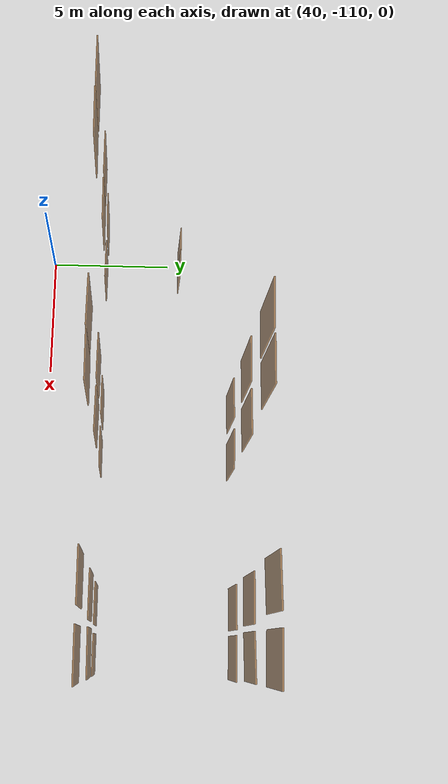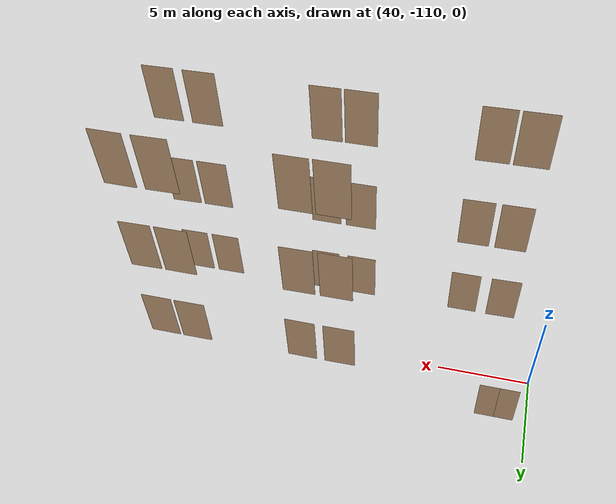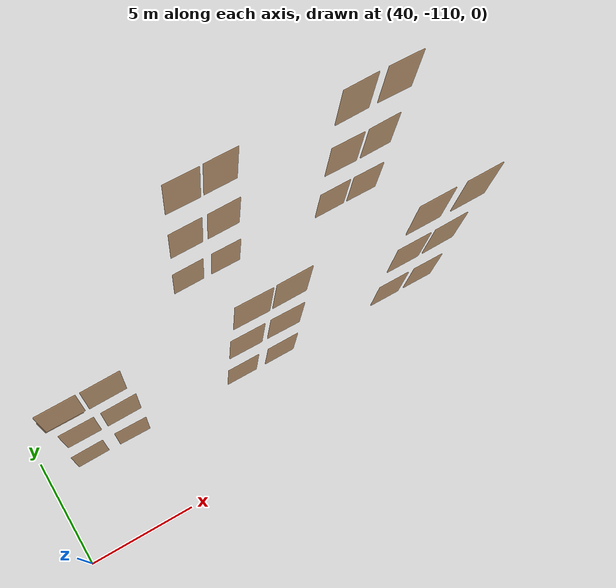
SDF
<sdf version="1.7">
 <world name="sim_world">
  <model name="0null49">
   <pose>41.993503341671925 -104.73964828435942 4.0 0 0 3.136221550022283</pose>
   <link name="right">
    <pose>0.4448968329062206 0 1.11 0 0 0</pose>
    <visual name="right_visual">
     <geometry><box><size>0.8797936658124412 0.03 2.2</size></box></geometry>
     <material>
      <ambient>0.5 0.25 0 0.6</ambient>
      <diffuse>0.5 0.25 0 0.6</diffuse>
      <pbr><metal><metalness>0.0</metalness></metal></pbr>
     </material>
    </visual>
    <collision name="right_collision">
     <geometry><box><size>0.8797936658124412 0.03 2.2</size></box></geometry>
     <surface><contact><collide_bitmask>0x02</collide_bitmask></contact></surface>
    </collision>
    <inertial>
     <mass>50.0</mass>
     <inertia><ixx>20.17041666666667</ixx><iyy>23.39182039334873</iyy><izz>3.2289037266820566</izz></inertia>
    </inertial>
   </link>
   <joint name="right_joint" type="revolute">
    <parent>world</parent>
    <child>right</child>
    <axis><xyz>0 0 1</xyz><limit><lower>0</lower><upper>1.57</upper></limit></axis>
    <pose>0.4448968329062206 0 0 0 0 0</pose>
   </joint>
   <link name="left">
    <pose>-0.4448968329062206 0 1.11 0 0 0</pose>
    <visual name="left_visual">
     <geometry><box><size>0.8797936658124412 0.03 2.2</size></box></geometry>
     <material>
      <ambient>0.5 0.25 0 0.6</ambient>
      <diffuse>0.5 0.25 0 0.6</diffuse>
      <pbr><metal><metalness>0.0</metalness></metal></pbr>
     </material>
    </visual>
    <collision name="left_collision">
     <geometry><box><size>0.8797936658124412 0.03 2.2</size></box></geometry>
     <surface><contact><collide_bitmask>0x02</collide_bitmask></contact></surface>
    </collision>
    <inertial>
     <mass>50.0</mass>
     <inertia><ixx>20.17041666666667</ixx><iyy>23.39182039334873</iyy><izz>3.2289037266820566</izz></inertia>
    </inertial>
   </link>
   <joint name="left_joint" type="revolute">
    <parent>world</parent>
    <child>left</child>
    <axis><xyz>0 0 1</xyz><limit><lower>-1.57</lower><upper>0</upper></limit></axis>
    <pose>-0.4448968329062206 0 0 0 0 0</pose>
   </joint>
   <plugin name="register_component" filename="libregister_component.so">
    <component name="Door">
     <v_max_door>0.5</v_max_door>
     <a_max_door>0.3</a_max_door>
     <a_nom_door>0.15</a_nom_door>
     <dx_min_door>0.01</dx_min_door>
     <f_max_door>500.0</f_max_door>
     <ros_interface>true</ros_interface>
     <door name="0null49" type="DoubleSwingDoor" left_joint_name="left_joint" right_joint_name="right_joint"/>
    </component>
   </plugin>
  </model>
  <model name="1null93">
   <pose>44.23892021058131 -107.39780831124213 8.0 0 0 3.1301681402699666</pose>
   <link name="right">
    <pose>0 0 1.11 0 0 0</pose>
    <visual name="right_visual">
     <geometry><box><size>1.2482682762474138 0.03 2.2</size></box></geometry>
     <material>
      <ambient>0.5 0.25 0 0.6</ambient>
      <diffuse>0.5 0.25 0 0.6</diffuse>
      <pbr><metal><metalness>0.0</metalness></metal></pbr>
     </material>
    </visual>
    <collision name="right_collision">
     <geometry><box><size>1.2482682762474138 0.03 2.2</size></box></geometry>
     <surface><contact><collide_bitmask>0x02</collide_bitmask></contact></surface>
    </collision>
    <inertial>
     <mass>50.0</mass>
     <inertia><ixx>20.17041666666667</ixx><iyy>26.659057039523713</iyy><izz>6.496140372857041</izz></inertia>
    </inertial>
   </link>
   <joint name="right_joint" type="revolute">
    <parent>world</parent>
    <child>right</child>
    <axis><xyz>0 0 -1</xyz><limit><lower>0</lower><upper>1.57</upper></limit></axis>
    <pose>0.6291341381237069 0 0 0 0 0</pose>
   </joint>
   <plugin name="register_component" filename="libregister_component.so">
    <component name="Door">
     <v_max_door>0.5</v_max_door>
     <a_max_door>0.3</a_max_door>
     <a_nom_door>0.15</a_nom_door>
     <dx_min_door>0.01</dx_min_door>
     <f_max_door>500.0</f_max_door>
     <ros_interface>true</ros_interface>
     <door name="1null93" type="SwingDoor" left_joint_name="empty_joint" right_joint_name="right_joint"/>
    </component>
   </plugin>
  </model>
  <model name="1null94">
   <pose>50.4494828809319 -107.39050890490229 8.0 0 0 -3.141410553983324</pose>
   <link name="right">
    <pose>0 0 1.11 0 0 0</pose>
    <visual name="right_visual">
     <geometry><box><size>1.220220682757675 0.03 2.2</size></box></geometry>
     <material>
      <ambient>0.5 0.25 0 0.6</ambient>
      <diffuse>0.5 0.25 0 0.6</diffuse>
      <pbr><metal><metalness>0.0</metalness></metal></pbr>
     </material>
    </visual>
    <collision name="right_collision">
     <geometry><box><size>1.220220682757675 0.03 2.2</size></box></geometry>
     <surface><contact><collide_bitmask>0x02</collide_bitmask></contact></surface>
    </collision>
    <inertial>
     <mass>50.0</mass>
     <inertia><ixx>20.17041666666667</ixx><iyy>26.37057714429003</iyy><izz>6.20766047762336</izz></inertia>
    </inertial>
   </link>
   <joint name="right_joint" type="revolute">
    <parent>world</parent>
    <child>right</child>
    <axis><xyz>0 0 -1</xyz><limit><lower>0</lower><upper>1.57</upper></limit></axis>
    <pose>0.6151103413788375 0 0 0 0 0</pose>
   </joint>
   <plugin name="register_component" filename="libregister_component.so">
    <component name="Door">
     <v_max_door>0.5</v_max_door>
     <a_max_door>0.3</a_max_door>
     <a_nom_door>0.15</a_nom_door>
     <dx_min_door>0.01</dx_min_door>
     <f_max_door>500.0</f_max_door>
     <ros_interface>true</ros_interface>
     <door name="1null94" type="SwingDoor" left_joint_name="empty_joint" right_joint_name="right_joint"/>
    </component>
   </plugin>
  </model>
  <model name="1null95">
   <pose>56.6030504424448 -107.39370122839108 8.0 0 0 3.1365184282962266</pose>
   <link name="right">
    <pose>0 0 1.11 0 0 0</pose>
    <visual name="right_visual">
     <geometry><box><size>1.204106658122132 0.03 2.2</size></box></geometry>
     <material>
      <ambient>0.5 0.25 0 0.6</ambient>
      <diffuse>0.5 0.25 0 0.6</diffuse>
      <pbr><metal><metalness>0.0</metalness></metal></pbr>
     </material>
    </visual>
    <collision name="right_collision">
     <geometry><box><size>1.204106658122132 0.03 2.2</size></box></geometry>
     <surface><contact><collide_bitmask>0x02</collide_bitmask></contact></surface>
    </collision>
    <inertial>
     <mass>50.0</mass>
     <inertia><ixx>20.17041666666667</ixx><iyy>26.20780351722521</iyy><izz>6.044886850558537</izz></inertia>
    </inertial>
   </link>
   <joint name="right_joint" type="revolute">
    <parent>world</parent>
    <child>right</child>
    <axis><xyz>0 0 -1</xyz><limit><lower>0</lower><upper>1.57</upper></limit></axis>
    <pose>0.607053329061066 0 0 0 0 0</pose>
   </joint>
   <plugin name="register_component" filename="libregister_component.so">
    <component name="Door">
     <v_max_door>0.5</v_max_door>
     <a_max_door>0.3</a_max_door>
     <a_nom_door>0.15</a_nom_door>
     <dx_min_door>0.01</dx_min_door>
     <f_max_door>500.0</f_max_door>
     <ros_interface>true</ros_interface>
     <door name="1null95" type="SwingDoor" left_joint_name="empty_joint" right_joint_name="right_joint"/>
    </component>
   </plugin>
  </model>
  <model name="1null96">
   <pose>42.52630399880518 -107.38250009334271 8.0 0 0 0.011822080263029867</pose>
   <link name="right">
    <pose>0 0 1.11 0 0 0</pose>
    <visual name="right_visual">
     <geometry><box><size>1.2564888307769841 0.03 2.2</size></box></geometry>
     <material>
      <ambient>0.5 0.25 0 0.6</ambient>
      <diffuse>0.5 0.25 0 0.6</diffuse>
      <pbr><metal><metalness>0.0</metalness></metal></pbr>
     </material>
    </visual>
    <collision name="right_collision">
     <geometry><box><size>1.2564888307769841 0.03 2.2</size></box></geometry>
     <surface><contact><collide_bitmask>0x02</collide_bitmask></contact></surface>
    </collision>
    <inertial>
     <mass>50.0</mass>
     <inertia><ixx>20.17041666666667</ixx><iyy>26.744850757780476</iyy><izz>6.581934091113802</izz></inertia>
    </inertial>
   </link>
   <joint name="right_joint" type="revolute">
    <parent>world</parent>
    <child>right</child>
    <axis><xyz>0 0 1</xyz><limit><lower>0</lower><upper>1.57</upper></limit></axis>
    <pose>0.6332444153884921 0 0 0 0 0</pose>
   </joint>
   <plugin name="register_component" filename="libregister_component.so">
    <component name="Door">
     <v_max_door>0.5</v_max_door>
     <a_max_door>0.3</a_max_door>
     <a_nom_door>0.15</a_nom_door>
     <dx_min_door>0.01</dx_min_door>
     <f_max_door>500.0</f_max_door>
     <ros_interface>true</ros_interface>
     <door name="1null96" type="SwingDoor" left_joint_name="empty_joint" right_joint_name="right_joint"/>
    </component>
   </plugin>
  </model>
  <model name="1null97">
   <pose>48.833607138856706 -107.3851510286375 8.0 0 0 -0.0022539405858351684</pose>
   <link name="right">
    <pose>0 0 1.11 0 0 0</pose>
    <visual name="right_visual">
     <geometry><box><size>1.2323957182842813 0.03 2.2</size></box></geometry>
     <material>
      <ambient>0.5 0.25 0 0.6</ambient>
      <diffuse>0.5 0.25 0 0.6</diffuse>
      <pbr><metal><metalness>0.0</metalness></metal></pbr>
     </material>
    </visual>
    <collision name="right_collision">
     <geometry><box><size>1.2323957182842813 0.03 2.2</size></box></geometry>
     <surface><contact><collide_bitmask>0x02</collide_bitmask></contact></surface>
    </collision>
    <inertial>
     <mass>50.0</mass>
     <inertia><ixx>20.17041666666667</ixx><iyy>26.49499669352263</iyy><izz>6.332080026855957</izz></inertia>
    </inertial>
   </link>
   <joint name="right_joint" type="revolute">
    <parent>world</parent>
    <child>right</child>
    <axis><xyz>0 0 1</xyz><limit><lower>0</lower><upper>1.57</upper></limit></axis>
    <pose>0.6211978591421407 0 0 0 0 0</pose>
   </joint>
   <plugin name="register_component" filename="libregister_component.so">
    <component name="Door">
     <v_max_door>0.5</v_max_door>
     <a_max_door>0.3</a_max_door>
     <a_nom_door>0.15</a_nom_door>
     <dx_min_door>0.01</dx_min_door>
     <f_max_door>500.0</f_max_door>
     <ros_interface>true</ros_interface>
     <door name="1null97" type="SwingDoor" left_joint_name="empty_joint" right_joint_name="right_joint"/>
    </component>
   </plugin>
  </model>
  <model name="1null98">
   <pose>55.14313183735949 -107.3888847403203 8.0 0 0 -0.00383811467201692</pose>
   <link name="right">
    <pose>0 0 1.11 0 0 0</pose>
    <visual name="right_visual">
     <geometry><box><size>1.2254569585401496 0.03 2.2</size></box></geometry>
     <material>
      <ambient>0.5 0.25 0 0.6</ambient>
      <diffuse>0.5 0.25 0 0.6</diffuse>
      <pbr><metal><metalness>0.0</metalness></metal></pbr>
     </material>
    </visual>
    <collision name="right_collision">
     <geometry><box><size>1.2254569585401496 0.03 2.2</size></box></geometry>
     <surface><contact><collide_bitmask>0x02</collide_bitmask></contact></surface>
    </collision>
    <inertial>
     <mass>50.0</mass>
     <inertia><ixx>20.17041666666667</ixx><iyy>26.42393648847698</iyy><izz>6.261019821810308</izz></inertia>
    </inertial>
   </link>
   <joint name="right_joint" type="revolute">
    <parent>world</parent>
    <child>right</child>
    <axis><xyz>0 0 1</xyz><limit><lower>0</lower><upper>1.57</upper></limit></axis>
    <pose>0.6177284792700748 0 0 0 0 0</pose>
   </joint>
   <plugin name="register_component" filename="libregister_component.so">
    <component name="Door">
     <v_max_door>0.5</v_max_door>
     <a_max_door>0.3</a_max_door>
     <a_nom_door>0.15</a_nom_door>
     <dx_min_door>0.01</dx_min_door>
     <f_max_door>500.0</f_max_door>
     <ros_interface>true</ros_interface>
     <door name="1null98" type="SwingDoor" left_joint_name="empty_joint" right_joint_name="right_joint"/>
    </component>
   </plugin>
  </model>
  <model name="1null99">
   <pose>48.83874099242053 -103.26221857148184 8.0 0 0 0.0031625448010696444</pose>
   <link name="right">
    <pose>0 0 1.11 0 0 0</pose>
    <visual name="right_visual">
     <geometry><box><size>1.288666091928061 0.03 2.2</size></box></geometry>
     <material>
      <ambient>0.5 0.25 0 0.6</ambient>
      <diffuse>0.5 0.25 0 0.6</diffuse>
      <pbr><metal><metalness>0.0</metalness></metal></pbr>
     </material>
    </visual>
    <collision name="right_collision">
     <geometry><box><size>1.288666091928061 0.03 2.2</size></box></geometry>
     <surface><contact><collide_bitmask>0x02</collide_bitmask></contact></surface>
    </collision>
    <inertial>
     <mass>50.0</mass>
     <inertia><ixx>20.17041666666667</ixx><iyy>27.086084568688094</iyy><izz>6.923167902021424</izz></inertia>
    </inertial>
   </link>
   <joint name="right_joint" type="revolute">
    <parent>world</parent>
    <child>right</child>
    <axis><xyz>0 0 -1</xyz><limit><lower>0</lower><upper>1.57</upper></limit></axis>
    <pose>0.6493330459640305 0 0 0 0 0</pose>
   </joint>
   <plugin name="register_component" filename="libregister_component.so">
    <component name="Door">
     <v_max_door>0.5</v_max_door>
     <a_max_door>0.3</a_max_door>
     <a_nom_door>0.15</a_nom_door>
     <dx_min_door>0.01</dx_min_door>
     <f_max_door>500.0</f_max_door>
     <ros_interface>true</ros_interface>
     <door name="1null99" type="SwingDoor" left_joint_name="empty_joint" right_joint_name="right_joint"/>
    </component>
   </plugin>
  </model>
  <model name="1null100">
   <pose>50.451835119292056 -103.27106746817003 8.0 0 0 3.1307173466037987</pose>
   <link name="right">
    <pose>0 0 1.11 0 0 0</pose>
    <visual name="right_visual">
     <geometry><box><size>1.2397098654138705 0.03 2.2</size></box></geometry>
     <material>
      <ambient>0.5 0.25 0 0.6</ambient>
      <diffuse>0.5 0.25 0 0.6</diffuse>
      <pbr><metal><metalness>0.0</metalness></metal></pbr>
     </material>
    </visual>
    <collision name="right_collision">
     <geometry><box><size>1.2397098654138705 0.03 2.2</size></box></geometry>
     <surface><contact><collide_bitmask>0x02</collide_bitmask></contact></surface>
    </collision>
    <inertial>
     <mass>50.0</mass>
     <inertia><ixx>20.17041666666667</ixx><iyy>26.570335626685324</iyy><izz>6.407418960018654</izz></inertia>
    </inertial>
   </link>
   <joint name="right_joint" type="revolute">
    <parent>world</parent>
    <child>right</child>
    <axis><xyz>0 0 1</xyz><limit><lower>0</lower><upper>1.57</upper></limit></axis>
    <pose>0.6248549327069353 0 0 0 0 0</pose>
   </joint>
   <plugin name="register_component" filename="libregister_component.so">
    <component name="Door">
     <v_max_door>0.5</v_max_door>
     <a_max_door>0.3</a_max_door>
     <a_nom_door>0.15</a_nom_door>
     <dx_min_door>0.01</dx_min_door>
     <f_max_door>500.0</f_max_door>
     <ros_interface>true</ros_interface>
     <door name="1null100" type="SwingDoor" left_joint_name="empty_joint" right_joint_name="right_joint"/>
    </component>
   </plugin>
  </model>
  <model name="1null101">
   <pose>55.16450733674342 -103.24313930478282 8.0 0 0 0.0</pose>
   <link name="right">
    <pose>0 0 1.11 0 0 0</pose>
    <visual name="right_visual">
     <geometry><box><size>1.3012048687600293 0.03 2.2</size></box></geometry>
     <material>
      <ambient>0.5 0.25 0 0.6</ambient>
      <diffuse>0.5 0.25 0 0.6</diffuse>
      <pbr><metal><metalness>0.0</metalness></metal></pbr>
     </material>
    </visual>
    <collision name="right_collision">
     <geometry><box><size>1.3012048687600293 0.03 2.2</size></box></geometry>
     <surface><contact><collide_bitmask>0x02</collide_bitmask></contact></surface>
    </collision>
    <inertial>
     <mass>50.0</mass>
     <inertia><ixx>20.17041666666667</ixx><iyy>27.221392127020025</iyy><izz>7.058475460353354</izz></inertia>
    </inertial>
   </link>
   <joint name="right_joint" type="revolute">
    <parent>world</parent>
    <child>right</child>
    <axis><xyz>0 0 -1</xyz><limit><lower>0</lower><upper>1.57</upper></limit></axis>
    <pose>0.6556024343800146 0 0 0 0 0</pose>
   </joint>
   <plugin name="register_component" filename="libregister_component.so">
    <component name="Door">
     <v_max_door>0.5</v_max_door>
     <a_max_door>0.3</a_max_door>
     <a_nom_door>0.15</a_nom_door>
     <dx_min_door>0.01</dx_min_door>
     <f_max_door>500.0</f_max_door>
     <ros_interface>true</ros_interface>
     <door name="1null101" type="SwingDoor" left_joint_name="empty_joint" right_joint_name="right_joint"/>
    </component>
   </plugin>
  </model>
  <model name="1null102">
   <pose>56.61451293731095 -103.25495650225884 8.0 0 0 3.1323386679214464</pose>
   <link name="right">
    <pose>0 0 1.11 0 0 0</pose>
    <visual name="right_visual">
     <geometry><box><size>1.3012983528134472 0.03 2.2</size></box></geometry>
     <material>
      <ambient>0.5 0.25 0 0.6</ambient>
      <diffuse>0.5 0.25 0 0.6</diffuse>
      <pbr><metal><metalness>0.0</metalness></metal></pbr>
     </material>
    </visual>
    <collision name="right_collision">
     <geometry><box><size>1.3012983528134472 0.03 2.2</size></box></geometry>
     <surface><contact><collide_bitmask>0x02</collide_bitmask></contact></surface>
    </collision>
    <inertial>
     <mass>50.0</mass>
     <inertia><ixx>20.17041666666667</ixx><iyy>27.222405845979136</iyy><izz>7.059489179312462</izz></inertia>
    </inertial>
   </link>
   <joint name="right_joint" type="revolute">
    <parent>world</parent>
    <child>right</child>
    <axis><xyz>0 0 1</xyz><limit><lower>0</lower><upper>1.57</upper></limit></axis>
    <pose>0.6556491764067236 0 0 0 0 0</pose>
   </joint>
   <plugin name="register_component" filename="libregister_component.so">
    <component name="Door">
     <v_max_door>0.5</v_max_door>
     <a_max_door>0.3</a_max_door>
     <a_nom_door>0.15</a_nom_door>
     <dx_min_door>0.01</dx_min_door>
     <f_max_door>500.0</f_max_door>
     <ros_interface>true</ros_interface>
     <door name="1null102" type="SwingDoor" left_joint_name="empty_joint" right_joint_name="right_joint"/>
    </component>
   </plugin>
  </model>
  <model name="2null86">
   <pose>44.19411567038791 -107.3840869208079 12.0 0 0 -3.1343020960266785</pose>
   <link name="right">
    <pose>0 0 1.11 0 0 0</pose>
    <visual name="right_visual">
     <geometry><box><size>1.2600931200068013 0.03 2.2</size></box></geometry>
     <material>
      <ambient>0.5 0.25 0 0.6</ambient>
      <diffuse>0.5 0.25 0 0.6</diffuse>
      <pbr><metal><metalness>0.0</metalness></metal></pbr>
     </material>
    </visual>
    <collision name="right_collision">
     <geometry><box><size>1.2600931200068013 0.03 2.2</size></box></geometry>
     <surface><contact><collide_bitmask>0x02</collide_bitmask></contact></surface>
    </collision>
    <inertial>
     <mass>50.0</mass>
     <inertia><ixx>20.17041666666667</ixx><iyy>26.782644462868653</iyy><izz>6.619727796201979</izz></inertia>
    </inertial>
   </link>
   <joint name="right_joint" type="revolute">
    <parent>world</parent>
    <child>right</child>
    <axis><xyz>0 0 -1</xyz><limit><lower>0</lower><upper>1.57</upper></limit></axis>
    <pose>0.6350465600034007 0 0 0 0 0</pose>
   </joint>
   <plugin name="register_component" filename="libregister_component.so">
    <component name="Door">
     <v_max_door>0.5</v_max_door>
     <a_max_door>0.3</a_max_door>
     <a_nom_door>0.15</a_nom_door>
     <dx_min_door>0.01</dx_min_door>
     <f_max_door>500.0</f_max_door>
     <ros_interface>true</ros_interface>
     <door name="2null86" type="SwingDoor" left_joint_name="empty_joint" right_joint_name="right_joint"/>
    </component>
   </plugin>
  </model>
  <model name="2null87">
   <pose>50.32134189597876 -107.39881641339649 12.0 0 0 3.1249858672603303</pose>
   <link name="right">
    <pose>0 0 1.11 0 0 0</pose>
    <visual name="right_visual">
     <geometry><box><size>1.2378665007325451 0.03 2.2</size></box></geometry>
     <material>
      <ambient>0.5 0.25 0 0.6</ambient>
      <diffuse>0.5 0.25 0 0.6</diffuse>
      <pbr><metal><metalness>0.0</metalness></metal></pbr>
     </material>
    </visual>
    <collision name="right_collision">
     <geometry><box><size>1.2378665007325451 0.03 2.2</size></box></geometry>
     <surface><contact><collide_bitmask>0x02</collide_bitmask></contact></surface>
    </collision>
    <inertial>
     <mass>50.0</mass>
     <inertia><ixx>20.17041666666667</ixx><iyy>26.551306140149322</iyy><izz>6.3883894734826505</izz></inertia>
    </inertial>
   </link>
   <joint name="right_joint" type="revolute">
    <parent>world</parent>
    <child>right</child>
    <axis><xyz>0 0 -1</xyz><limit><lower>0</lower><upper>1.57</upper></limit></axis>
    <pose>0.6239332503662726 0 0 0 0 0</pose>
   </joint>
   <plugin name="register_component" filename="libregister_component.so">
    <component name="Door">
     <v_max_door>0.5</v_max_door>
     <a_max_door>0.3</a_max_door>
     <a_nom_door>0.15</a_nom_door>
     <dx_min_door>0.01</dx_min_door>
     <f_max_door>500.0</f_max_door>
     <ros_interface>true</ros_interface>
     <door name="2null87" type="SwingDoor" left_joint_name="empty_joint" right_joint_name="right_joint"/>
    </component>
   </plugin>
  </model>
  <model name="2null88">
   <pose>56.541686890938244 -107.38143598551312 12.0 0 0 -3.1303392988105676</pose>
   <link name="right">
    <pose>0 0 1.11 0 0 0</pose>
    <visual name="right_visual">
     <geometry><box><size>1.257451346505099 0.03 2.2</size></box></geometry>
     <material>
      <ambient>0.5 0.25 0 0.6</ambient>
      <diffuse>0.5 0.25 0 0.6</diffuse>
      <pbr><metal><metalness>0.0</metalness></metal></pbr>
     </material>
    </visual>
    <collision name="right_collision">
     <geometry><box><size>1.257451346505099 0.03 2.2</size></box></geometry>
     <surface><contact><collide_bitmask>0x02</collide_bitmask></contact></surface>
    </collision>
    <inertial>
     <mass>50.0</mass>
     <inertia><ixx>20.17041666666667</ixx><iyy>26.754932870114533</iyy><izz>6.5920162034478595</izz></inertia>
    </inertial>
   </link>
   <joint name="right_joint" type="revolute">
    <parent>world</parent>
    <child>right</child>
    <axis><xyz>0 0 -1</xyz><limit><lower>0</lower><upper>1.57</upper></limit></axis>
    <pose>0.6337256732525495 0 0 0 0 0</pose>
   </joint>
   <plugin name="register_component" filename="libregister_component.so">
    <component name="Door">
     <v_max_door>0.5</v_max_door>
     <a_max_door>0.3</a_max_door>
     <a_nom_door>0.15</a_nom_door>
     <dx_min_door>0.01</dx_min_door>
     <f_max_door>500.0</f_max_door>
     <ros_interface>true</ros_interface>
     <door name="2null88" type="SwingDoor" left_joint_name="empty_joint" right_joint_name="right_joint"/>
    </component>
   </plugin>
  </model>
  <model name="2null89">
   <pose>42.7001456147556 -107.38498301161178 12.0 0 0 -0.0033157555079758295</pose>
   <link name="right">
    <pose>0 0 1.11 0 0 0</pose>
    <visual name="right_visual">
     <geometry><box><size>1.2511800650591312 0.03 2.2</size></box></geometry>
     <material>
      <ambient>0.5 0.25 0 0.6</ambient>
      <diffuse>0.5 0.25 0 0.6</diffuse>
      <pbr><metal><metalness>0.0</metalness></metal></pbr>
     </material>
    </visual>
    <collision name="right_collision">
     <geometry><box><size>1.2511800650591312 0.03 2.2</size></box></geometry>
     <surface><contact><collide_bitmask>0x02</collide_bitmask></contact></surface>
    </collision>
    <inertial>
     <mass>50.0</mass>
     <inertia><ixx>20.17041666666667</ixx><iyy>26.689381480005718</iyy><izz>6.526464813339048</izz></inertia>
    </inertial>
   </link>
   <joint name="right_joint" type="revolute">
    <parent>world</parent>
    <child>right</child>
    <axis><xyz>0 0 1</xyz><limit><lower>0</lower><upper>1.57</upper></limit></axis>
    <pose>0.6305900325295656 0 0 0 0 0</pose>
   </joint>
   <plugin name="register_component" filename="libregister_component.so">
    <component name="Door">
     <v_max_door>0.5</v_max_door>
     <a_max_door>0.3</a_max_door>
     <a_nom_door>0.15</a_nom_door>
     <dx_min_door>0.01</dx_min_door>
     <f_max_door>500.0</f_max_door>
     <ros_interface>true</ros_interface>
     <door name="2null89" type="SwingDoor" left_joint_name="empty_joint" right_joint_name="right_joint"/>
    </component>
   </plugin>
  </model>
  <model name="2null90">
   <pose>48.857764253444316 -107.38500168017019 12.0 0 0 -0.010863667807178838</pose>
   <link name="right">
    <pose>0 0 1.11 0 0 0</pose>
    <visual name="right_visual">
     <geometry><box><size>1.2513595752025057 0.03 2.2</size></box></geometry>
     <material>
      <ambient>0.5 0.25 0 0.6</ambient>
      <diffuse>0.5 0.25 0 0.6</diffuse>
      <pbr><metal><metalness>0.0</metalness></metal></pbr>
     </material>
    </visual>
    <collision name="right_collision">
     <geometry><box><size>1.2513595752025057 0.03 2.2</size></box></geometry>
     <surface><contact><collide_bitmask>0x02</collide_bitmask></contact></surface>
    </collision>
    <inertial>
     <mass>50.0</mass>
     <inertia><ixx>20.17041666666667</ixx><iyy>26.691253276879152</iyy><izz>6.528336610212481</izz></inertia>
    </inertial>
   </link>
   <joint name="right_joint" type="revolute">
    <parent>world</parent>
    <child>right</child>
    <axis><xyz>0 0 1</xyz><limit><lower>0</lower><upper>1.57</upper></limit></axis>
    <pose>0.6306797876012529 0 0 0 0 0</pose>
   </joint>
   <plugin name="register_component" filename="libregister_component.so">
    <component name="Door">
     <v_max_door>0.5</v_max_door>
     <a_max_door>0.3</a_max_door>
     <a_nom_door>0.15</a_nom_door>
     <dx_min_door>0.01</dx_min_door>
     <f_max_door>500.0</f_max_door>
     <ros_interface>true</ros_interface>
     <door name="2null90" type="SwingDoor" left_joint_name="empty_joint" right_joint_name="right_joint"/>
    </component>
   </plugin>
  </model>
  <model name="2null91">
   <pose>55.11132061382216 -107.38796998095799 12.0 0 0 -0.004196812954206581</pose>
   <link name="right">
    <pose>0 0 1.11 0 0 0</pose>
    <visual name="right_visual">
     <geometry><box><size>1.2533124733658354 0.03 2.2</size></box></geometry>
     <material>
      <ambient>0.5 0.25 0 0.6</ambient>
      <diffuse>0.5 0.25 0 0.6</diffuse>
      <pbr><metal><metalness>0.0</metalness></metal></pbr>
     </material>
    </visual>
    <collision name="right_collision">
     <geometry><box><size>1.2533124733658354 0.03 2.2</size></box></geometry>
     <surface><contact><collide_bitmask>0x02</collide_bitmask></contact></surface>
    </collision>
    <inertial>
     <mass>50.0</mass>
     <inertia><ixx>20.17041666666667</ixx><iyy>26.71163398289329</iyy><izz>6.548717316226616</izz></inertia>
    </inertial>
   </link>
   <joint name="right_joint" type="revolute">
    <parent>world</parent>
    <child>right</child>
    <axis><xyz>0 0 1</xyz><limit><lower>0</lower><upper>1.57</upper></limit></axis>
    <pose>0.6316562366829177 0 0 0 0 0</pose>
   </joint>
   <plugin name="register_component" filename="libregister_component.so">
    <component name="Door">
     <v_max_door>0.5</v_max_door>
     <a_max_door>0.3</a_max_door>
     <a_nom_door>0.15</a_nom_door>
     <dx_min_door>0.01</dx_min_door>
     <f_max_door>500.0</f_max_door>
     <ros_interface>true</ros_interface>
     <door name="2null91" type="SwingDoor" left_joint_name="empty_joint" right_joint_name="right_joint"/>
    </component>
   </plugin>
  </model>
  <model name="2null92">
   <pose>48.86166598215283 -103.26010902438108 12.0 0 0 -0.004001380595488037</pose>
   <link name="right">
    <pose>0 0 1.11 0 0 0</pose>
    <visual name="right_visual">
     <geometry><box><size>1.268358439866204 0.03 2.2</size></box></geometry>
     <material>
      <ambient>0.5 0.25 0 0.6</ambient>
      <diffuse>0.5 0.25 0 0.6</diffuse>
      <pbr><metal><metalness>0.0</metalness></metal></pbr>
     </material>
    </visual>
    <collision name="right_collision">
     <geometry><box><size>1.268358439866204 0.03 2.2</size></box></geometry>
     <surface><contact><collide_bitmask>0x02</collide_bitmask></contact></surface>
    </collision>
    <inertial>
     <mass>50.0</mass>
     <inertia><ixx>20.17041666666667</ixx><iyy>26.869721383249303</iyy><izz>6.70680471658263</izz></inertia>
    </inertial>
   </link>
   <joint name="right_joint" type="revolute">
    <parent>world</parent>
    <child>right</child>
    <axis><xyz>0 0 -1</xyz><limit><lower>0</lower><upper>1.57</upper></limit></axis>
    <pose>0.639179219933102 0 0 0 0 0</pose>
   </joint>
   <plugin name="register_component" filename="libregister_component.so">
    <component name="Door">
     <v_max_door>0.5</v_max_door>
     <a_max_door>0.3</a_max_door>
     <a_nom_door>0.15</a_nom_door>
     <dx_min_door>0.01</dx_min_door>
     <f_max_door>500.0</f_max_door>
     <ros_interface>true</ros_interface>
     <door name="2null92" type="SwingDoor" left_joint_name="empty_joint" right_joint_name="right_joint"/>
    </component>
   </plugin>
  </model>
  <model name="2null93">
   <pose>50.32707314341184 -103.26429078146579 12.0 0 0 -3.1397338099854477</pose>
   <link name="right">
    <pose>0 0 1.11 0 0 0</pose>
    <visual name="right_visual">
     <geometry><box><size>1.255431749751349 0.03 2.2</size></box></geometry>
     <material>
      <ambient>0.5 0.25 0 0.6</ambient>
      <diffuse>0.5 0.25 0 0.6</diffuse>
      <pbr><metal><metalness>0.0</metalness></metal></pbr>
     </material>
    </visual>
    <collision name="right_collision">
     <geometry><box><size>1.255431749751349 0.03 2.2</size></box></geometry>
     <surface><contact><collide_bitmask>0x02</collide_bitmask></contact></surface>
    </collision>
    <inertial>
     <mass>50.0</mass>
     <inertia><ixx>20.17041666666667</ixx><iyy>26.7337869928489</iyy><izz>6.5708703261822246</izz></inertia>
    </inertial>
   </link>
   <joint name="right_joint" type="revolute">
    <parent>world</parent>
    <child>right</child>
    <axis><xyz>0 0 1</xyz><limit><lower>0</lower><upper>1.57</upper></limit></axis>
    <pose>0.6327158748756745 0 0 0 0 0</pose>
   </joint>
   <plugin name="register_component" filename="libregister_component.so">
    <component name="Door">
     <v_max_door>0.5</v_max_door>
     <a_max_door>0.3</a_max_door>
     <a_nom_door>0.15</a_nom_door>
     <dx_min_door>0.01</dx_min_door>
     <f_max_door>500.0</f_max_door>
     <ros_interface>true</ros_interface>
     <door name="2null93" type="SwingDoor" left_joint_name="empty_joint" right_joint_name="right_joint"/>
    </component>
   </plugin>
  </model>
  <model name="2null94">
   <pose>55.10517865810399 -103.26333868498668 12.0 0 0 -0.011713749929440909</pose>
   <link name="right">
    <pose>0 0 1.11 0 0 0</pose>
    <visual name="right_visual">
     <geometry><box><size>1.2968887483177105 0.03 2.2</size></box></geometry>
     <material>
      <ambient>0.5 0.25 0 0.6</ambient>
      <diffuse>0.5 0.25 0 0.6</diffuse>
      <pbr><metal><metalness>0.0</metalness></metal></pbr>
     </material>
    </visual>
    <collision name="right_collision">
     <geometry><box><size>1.2968887483177105 0.03 2.2</size></box></geometry>
     <surface><contact><collide_bitmask>0x02</collide_bitmask></contact></surface>
    </collision>
    <inertial>
     <mass>50.0</mass>
     <inertia><ixx>20.17041666666667</ixx><iyy>27.17466843963783</iyy><izz>7.0117517729711585</izz></inertia>
    </inertial>
   </link>
   <joint name="right_joint" type="revolute">
    <parent>world</parent>
    <child>right</child>
    <axis><xyz>0 0 -1</xyz><limit><lower>0</lower><upper>1.57</upper></limit></axis>
    <pose>0.6534443741588553 0 0 0 0 0</pose>
   </joint>
   <plugin name="register_component" filename="libregister_component.so">
    <component name="Door">
     <v_max_door>0.5</v_max_door>
     <a_max_door>0.3</a_max_door>
     <a_nom_door>0.15</a_nom_door>
     <dx_min_door>0.01</dx_min_door>
     <f_max_door>500.0</f_max_door>
     <ros_interface>true</ros_interface>
     <door name="2null94" type="SwingDoor" left_joint_name="empty_joint" right_joint_name="right_joint"/>
    </component>
   </plugin>
  </model>
  <model name="2null95">
   <pose>56.544300489116196 -103.26238658850757 12.0 0 0 -3.129282222118571</pose>
   <link name="right">
    <pose>0 0 1.11 0 0 0</pose>
    <visual name="right_visual">
     <geometry><box><size>1.25477865651261 0.03 2.2</size></box></geometry>
     <material>
      <ambient>0.5 0.25 0 0.6</ambient>
      <diffuse>0.5 0.25 0 0.6</diffuse>
      <pbr><metal><metalness>0.0</metalness></metal></pbr>
     </material>
    </visual>
    <collision name="right_collision">
     <geometry><box><size>1.25477865651261 0.03 2.2</size></box></geometry>
     <surface><contact><collide_bitmask>0x02</collide_bitmask></contact></surface>
    </collision>
    <inertial>
     <mass>50.0</mass>
     <inertia><ixx>20.17041666666667</ixx><iyy>26.7269561534983</iyy><izz>6.564039486831628</izz></inertia>
    </inertial>
   </link>
   <joint name="right_joint" type="revolute">
    <parent>world</parent>
    <child>right</child>
    <axis><xyz>0 0 1</xyz><limit><lower>0</lower><upper>1.57</upper></limit></axis>
    <pose>0.632389328256305 0 0 0 0 0</pose>
   </joint>
   <plugin name="register_component" filename="libregister_component.so">
    <component name="Door">
     <v_max_door>0.5</v_max_door>
     <a_max_door>0.3</a_max_door>
     <a_nom_door>0.15</a_nom_door>
     <dx_min_door>0.01</dx_min_door>
     <f_max_door>500.0</f_max_door>
     <ros_interface>true</ros_interface>
     <door name="2null95" type="SwingDoor" left_joint_name="empty_joint" right_joint_name="right_joint"/>
    </component>
   </plugin>
  </model>
  <model name="nullgr">
   <pose>42.59124364710624 -107.48370385922715 16.0 0 0 -4.1949482919383154e-05</pose>
   <link name="right">
    <pose>0 0 1.11 0 0 0</pose>
    <visual name="right_visual">
     <geometry><box><size>1.295083842518337 0.03 2.2</size></box></geometry>
     <material>
      <ambient>0.5 0.25 0 0.6</ambient>
      <diffuse>0.5 0.25 0 0.6</diffuse>
      <pbr><metal><metalness>0.0</metalness></metal></pbr>
     </material>
    </visual>
    <collision name="right_collision">
     <geometry><box><size>1.295083842518337 0.03 2.2</size></box></geometry>
     <surface><contact><collide_bitmask>0x02</collide_bitmask></contact></surface>
    </collision>
    <inertial>
     <mass>50.0</mass>
     <inertia><ixx>20.17041666666667</ixx><iyy>27.155175663133594</iyy><izz>6.992258996466921</izz></inertia>
    </inertial>
   </link>
   <joint name="right_joint" type="revolute">
    <parent>world</parent>
    <child>right</child>
    <axis><xyz>0 0 1</xyz><limit><lower>0</lower><upper>1.57</upper></limit></axis>
    <pose>0.6525419212591685 0 0 0 0 0</pose>
   </joint>
   <plugin name="register_component" filename="libregister_component.so">
    <component name="Door">
     <v_max_door>0.5</v_max_door>
     <a_max_door>0.3</a_max_door>
     <a_nom_door>0.15</a_nom_door>
     <dx_min_door>0.01</dx_min_door>
     <f_max_door>500.0</f_max_door>
     <ros_interface>true</ros_interface>
     <door name="nullgr" type="SwingDoor" left_joint_name="empty_joint" right_joint_name="right_joint"/>
    </component>
   </plugin>
  </model>
  <model name="nullARG">
   <pose>43.987892199842875 -107.48948297282593 16.0 0 0 -3.1325492217128934</pose>
   <link name="right">
    <pose>0 0 1.11 0 0 0</pose>
    <visual name="right_visual">
     <geometry><box><size>1.2492985110038632 0.03 2.2</size></box></geometry>
     <material>
      <ambient>0.5 0.25 0 0.6</ambient>
      <diffuse>0.5 0.25 0 0.6</diffuse>
      <pbr><metal><metalness>0.0</metalness></metal></pbr>
     </material>
    </visual>
    <collision name="right_collision">
     <geometry><box><size>1.2492985110038632 0.03 2.2</size></box></geometry>
     <surface><contact><collide_bitmask>0x02</collide_bitmask></contact></surface>
    </collision>
    <inertial>
     <mass>50.0</mass>
     <inertia><ixx>20.17041666666667</ixx><iyy>26.669778206651962</iyy><izz>6.506861539985291</izz></inertia>
    </inertial>
   </link>
   <joint name="right_joint" type="revolute">
    <parent>world</parent>
    <child>right</child>
    <axis><xyz>0 0 -1</xyz><limit><lower>0</lower><upper>1.57</upper></limit></axis>
    <pose>0.6296492555019316 0 0 0 0 0</pose>
   </joint>
   <plugin name="register_component" filename="libregister_component.so">
    <component name="Door">
     <v_max_door>0.5</v_max_door>
     <a_max_door>0.3</a_max_door>
     <a_nom_door>0.15</a_nom_door>
     <dx_min_door>0.01</dx_min_door>
     <f_max_door>500.0</f_max_door>
     <ros_interface>true</ros_interface>
     <door name="nullARG" type="SwingDoor" left_joint_name="empty_joint" right_joint_name="right_joint"/>
    </component>
   </plugin>
  </model>
  <model name="nullGR">
   <pose>48.85962288895507 -107.48753071979323 16.0 0 0 -0.015150689843453807</pose>
   <link name="right">
    <pose>0 0 1.11 0 0 0</pose>
    <visual name="right_visual">
     <geometry><box><size>1.2408359287551358 0.03 2.2</size></box></geometry>
     <material>
      <ambient>0.5 0.25 0 0.6</ambient>
      <diffuse>0.5 0.25 0 0.6</diffuse>
      <pbr><metal><metalness>0.0</metalness></metal></pbr>
     </material>
    </visual>
    <collision name="right_collision">
     <geometry><box><size>1.2408359287551358 0.03 2.2</size></box></geometry>
     <surface><contact><collide_bitmask>0x02</collide_bitmask></contact></surface>
    </collision>
    <inertial>
     <mass>50.0</mass>
     <inertia><ixx>20.17041666666667</ixx><iyy>26.581974175373425</iyy><izz>6.419057508706753</izz></inertia>
    </inertial>
   </link>
   <joint name="right_joint" type="revolute">
    <parent>world</parent>
    <child>right</child>
    <axis><xyz>0 0 1</xyz><limit><lower>0</lower><upper>1.57</upper></limit></axis>
    <pose>0.6254179643775679 0 0 0 0 0</pose>
   </joint>
   <plugin name="register_component" filename="libregister_component.so">
    <component name="Door">
     <v_max_door>0.5</v_max_door>
     <a_max_door>0.3</a_max_door>
     <a_nom_door>0.15</a_nom_door>
     <dx_min_door>0.01</dx_min_door>
     <f_max_door>500.0</f_max_door>
     <ros_interface>true</ros_interface>
     <door name="nullGR" type="SwingDoor" left_joint_name="empty_joint" right_joint_name="right_joint"/>
    </component>
   </plugin>
  </model>
  <model name="nullDZG">
   <pose>50.17885283700457 -107.48415009057148 16.0 0 0 -3.1377844403688924</pose>
   <link name="right">
    <pose>0 0 1.11 0 0 0</pose>
    <visual name="right_visual">
     <geometry><box><size>1.176734429774227 0.03 2.2</size></box></geometry>
     <material>
      <ambient>0.5 0.25 0 0.6</ambient>
      <diffuse>0.5 0.25 0 0.6</diffuse>
      <pbr><metal><metalness>0.0</metalness></metal></pbr>
     </material>
    </visual>
    <collision name="right_collision">
     <geometry><box><size>1.176734429774227 0.03 2.2</size></box></geometry>
     <surface><contact><collide_bitmask>0x02</collide_bitmask></contact></surface>
    </collision>
    <inertial>
     <mass>50.0</mass>
     <inertia><ixx>20.17041666666667</ixx><iyy>25.936266325900316</iyy><izz>5.773349659233647</izz></inertia>
    </inertial>
   </link>
   <joint name="right_joint" type="revolute">
    <parent>world</parent>
    <child>right</child>
    <axis><xyz>0 0 -1</xyz><limit><lower>0</lower><upper>1.57</upper></limit></axis>
    <pose>0.5933672148871135 0 0 0 0 0</pose>
   </joint>
   <plugin name="register_component" filename="libregister_component.so">
    <component name="Door">
     <v_max_door>0.5</v_max_door>
     <a_max_door>0.3</a_max_door>
     <a_nom_door>0.15</a_nom_door>
     <dx_min_door>0.01</dx_min_door>
     <f_max_door>500.0</f_max_door>
     <ros_interface>true</ros_interface>
     <door name="nullDZG" type="SwingDoor" left_joint_name="empty_joint" right_joint_name="right_joint"/>
    </component>
   </plugin>
  </model>
  <model name="nullGFDZB">
   <pose>54.945421556273935 -107.46667673067444 16.0 0 0 -4.194948292964487e-05</pose>
   <link name="right">
    <pose>0 0 1.11 0 0 0</pose>
    <visual name="right_visual">
     <geometry><box><size>1.2346253875685933 0.03 2.2</size></box></geometry>
     <material>
      <ambient>0.5 0.25 0 0.6</ambient>
      <diffuse>0.5 0.25 0 0.6</diffuse>
      <pbr><metal><metalness>0.0</metalness></metal></pbr>
     </material>
    </visual>
    <collision name="right_collision">
     <geometry><box><size>1.2346253875685933 0.03 2.2</size></box></geometry>
     <surface><contact><collide_bitmask>0x02</collide_bitmask></contact></surface>
    </collision>
    <inertial>
     <mass>50.0</mass>
     <inertia><ixx>20.17041666666667</ixx><iyy>26.517916031787085</iyy><izz>6.354999365120413</izz></inertia>
    </inertial>
   </link>
   <joint name="right_joint" type="revolute">
    <parent>world</parent>
    <child>right</child>
    <axis><xyz>0 0 1</xyz><limit><lower>0</lower><upper>1.57</upper></limit></axis>
    <pose>0.6223126937842967 0 0 0 0 0</pose>
   </joint>
   <plugin name="register_component" filename="libregister_component.so">
    <component name="Door">
     <v_max_door>0.5</v_max_door>
     <a_max_door>0.3</a_max_door>
     <a_nom_door>0.15</a_nom_door>
     <dx_min_door>0.01</dx_min_door>
     <f_max_door>500.0</f_max_door>
     <ros_interface>true</ros_interface>
     <door name="nullGFDZB" type="SwingDoor" left_joint_name="empty_joint" right_joint_name="right_joint"/>
    </component>
   </plugin>
  </model>
  <model name="nulDGl">
   <pose>56.55599558405807 -107.4778198145019 16.0 0 0 -3.138498240305799</pose>
   <link name="right">
    <pose>0 0 1.11 0 0 0</pose>
    <visual name="right_visual">
     <geometry><box><size>1.225383586327515 0.03 2.2</size></box></geometry>
     <material>
      <ambient>0.5 0.25 0 0.6</ambient>
      <diffuse>0.5 0.25 0 0.6</diffuse>
      <pbr><metal><metalness>0.0</metalness></metal></pbr>
     </material>
    </visual>
    <collision name="right_collision">
     <geometry><box><size>1.225383586327515 0.03 2.2</size></box></geometry>
     <surface><contact><collide_bitmask>0x02</collide_bitmask></contact></surface>
    </collision>
    <inertial>
     <mass>50.0</mass>
     <inertia><ixx>20.17041666666667</ixx><iyy>26.423187223503685</iyy><izz>6.260270556837011</izz></inertia>
    </inertial>
   </link>
   <joint name="right_joint" type="revolute">
    <parent>world</parent>
    <child>right</child>
    <axis><xyz>0 0 -1</xyz><limit><lower>0</lower><upper>1.57</upper></limit></axis>
    <pose>0.6176917931637576 0 0 0 0 0</pose>
   </joint>
   <plugin name="register_component" filename="libregister_component.so">
    <component name="Door">
     <v_max_door>0.5</v_max_door>
     <a_max_door>0.3</a_max_door>
     <a_nom_door>0.15</a_nom_door>
     <dx_min_door>0.01</dx_min_door>
     <f_max_door>500.0</f_max_door>
     <ros_interface>true</ros_interface>
     <door name="nulDGl" type="SwingDoor" left_joint_name="empty_joint" right_joint_name="right_joint"/>
    </component>
   </plugin>
  </model>
  <model name="nulHSl">
   <pose>48.84422824360995 -103.27104630135189 16.0 0 0 -0.017584523232012282</pose>
   <link name="right">
    <pose>0 0 1.11 0 0 0</pose>
    <visual name="right_visual">
     <geometry><box><size>1.2381803058120981 0.03 2.2</size></box></geometry>
     <material>
      <ambient>0.5 0.25 0 0.6</ambient>
      <diffuse>0.5 0.25 0 0.6</diffuse>
      <pbr><metal><metalness>0.0</metalness></metal></pbr>
     </material>
    </visual>
    <collision name="right_collision">
     <geometry><box><size>1.2381803058120981 0.03 2.2</size></box></geometry>
     <surface><contact><collide_bitmask>0x02</collide_bitmask></contact></surface>
    </collision>
    <inertial>
     <mass>50.0</mass>
     <inertia><ixx>20.17041666666667</ixx><iyy>26.554543623753926</iyy><izz>6.3916269570872535</izz></inertia>
    </inertial>
   </link>
   <joint name="right_joint" type="revolute">
    <parent>world</parent>
    <child>right</child>
    <axis><xyz>0 0 -1</xyz><limit><lower>0</lower><upper>1.57</upper></limit></axis>
    <pose>0.6240901529060491 0 0 0 0 0</pose>
   </joint>
   <plugin name="register_component" filename="libregister_component.so">
    <component name="Door">
     <v_max_door>0.5</v_max_door>
     <a_max_door>0.3</a_max_door>
     <a_nom_door>0.15</a_nom_door>
     <dx_min_door>0.01</dx_min_door>
     <f_max_door>500.0</f_max_door>
     <ros_interface>true</ros_interface>
     <door name="nulHSl" type="SwingDoor" left_joint_name="empty_joint" right_joint_name="right_joint"/>
    </component>
   </plugin>
  </model>
  <model name="nuSHll">
   <pose>50.17431402209434 -103.27656675255272 16.0 0 0 3.1323609125762366</pose>
   <link name="right">
    <pose>0 0 1.11 0 0 0</pose>
    <visual name="right_visual">
     <geometry><box><size>1.1832824329233638 0.03 2.2</size></box></geometry>
     <material>
      <ambient>0.5 0.25 0 0.6</ambient>
      <diffuse>0.5 0.25 0 0.6</diffuse>
      <pbr><metal><metalness>0.0</metalness></metal></pbr>
     </material>
    </visual>
    <collision name="right_collision">
     <geometry><box><size>1.1832824329233638 0.03 2.2</size></box></geometry>
     <surface><contact><collide_bitmask>0x02</collide_bitmask></contact></surface>
    </collision>
    <inertial>
     <mass>50.0</mass>
     <inertia><ixx>20.17041666666667</ixx><iyy>26.000655483604316</iyy><izz>5.837738816937645</izz></inertia>
    </inertial>
   </link>
   <joint name="right_joint" type="revolute">
    <parent>world</parent>
    <child>right</child>
    <axis><xyz>0 0 1</xyz><limit><lower>0</lower><upper>1.57</upper></limit></axis>
    <pose>0.5966412164616819 0 0 0 0 0</pose>
   </joint>
   <plugin name="register_component" filename="libregister_component.so">
    <component name="Door">
     <v_max_door>0.5</v_max_door>
     <a_max_door>0.3</a_max_door>
     <a_nom_door>0.15</a_nom_door>
     <dx_min_door>0.01</dx_min_door>
     <f_max_door>500.0</f_max_door>
     <ros_interface>true</ros_interface>
     <door name="nuSHll" type="SwingDoor" left_joint_name="empty_joint" right_joint_name="right_joint"/>
    </component>
   </plugin>
  </model>
  <model name="nuNHll">
   <pose>54.955193493917264 -103.2518930766388 16.0 0 0 0.010939651538636918</pose>
   <link name="right">
    <pose>0 0 1.11 0 0 0</pose>
    <visual name="right_visual">
     <geometry><box><size>1.2582053552765142 0.03 2.2</size></box></geometry>
     <material>
      <ambient>0.5 0.25 0 0.6</ambient>
      <diffuse>0.5 0.25 0 0.6</diffuse>
      <pbr><metal><metalness>0.0</metalness></metal></pbr>
     </material>
    </visual>
    <collision name="right_collision">
     <geometry><box><size>1.2582053552765142 0.03 2.2</size></box></geometry>
     <surface><contact><collide_bitmask>0x02</collide_bitmask></contact></surface>
    </collision>
    <inertial>
     <mass>50.0</mass>
     <inertia><ixx>20.17041666666667</ixx><iyy>26.76283631686042</iyy><izz>6.599919650193748</izz></inertia>
    </inertial>
   </link>
   <joint name="right_joint" type="revolute">
    <parent>world</parent>
    <child>right</child>
    <axis><xyz>0 0 -1</xyz><limit><lower>0</lower><upper>1.57</upper></limit></axis>
    <pose>0.6341026776382571 0 0 0 0 0</pose>
   </joint>
   <plugin name="register_component" filename="libregister_component.so">
    <component name="Door">
     <v_max_door>0.5</v_max_door>
     <a_max_door>0.3</a_max_door>
     <a_nom_door>0.15</a_nom_door>
     <dx_min_door>0.01</dx_min_door>
     <f_max_door>500.0</f_max_door>
     <ros_interface>true</ros_interface>
     <door name="nuNHll" type="SwingDoor" left_joint_name="empty_joint" right_joint_name="right_joint"/>
    </component>
   </plugin>
  </model>
  <model name="nuSFGll">
   <pose>56.53456981480919 -103.25894092975531 16.0 0 0 3.119234678466282</pose>
   <link name="right">
    <pose>0 0 1.11 0 0 0</pose>
    <visual name="right_visual">
     <geometry><box><size>1.2398712338156337 0.03 2.2</size></box></geometry>
     <material>
      <ambient>0.5 0.25 0 0.6</ambient>
      <diffuse>0.5 0.25 0 0.6</diffuse>
      <pbr><metal><metalness>0.0</metalness></metal></pbr>
     </material>
    </visual>
    <collision name="right_collision">
     <geometry><box><size>1.2398712338156337 0.03 2.2</size></box></geometry>
     <surface><contact><collide_bitmask>0x02</collide_bitmask></contact></surface>
    </collision>
    <inertial>
     <mass>50.0</mass>
     <inertia><ixx>20.17041666666667</ixx><iyy>26.572002818514598</iyy><izz>6.409086151847925</izz></inertia>
    </inertial>
   </link>
   <joint name="right_joint" type="revolute">
    <parent>world</parent>
    <child>right</child>
    <axis><xyz>0 0 1</xyz><limit><lower>0</lower><upper>1.57</upper></limit></axis>
    <pose>0.6249356169078168 0 0 0 0 0</pose>
   </joint>
   <plugin name="register_component" filename="libregister_component.so">
    <component name="Door">
     <v_max_door>0.5</v_max_door>
     <a_max_door>0.3</a_max_door>
     <a_nom_door>0.15</a_nom_door>
     <dx_min_door>0.01</dx_min_door>
     <f_max_door>500.0</f_max_door>
     <ros_interface>true</ros_interface>
     <door name="nuSFGll" type="SwingDoor" left_joint_name="empty_joint" right_joint_name="right_joint"/>
    </component>
   </plugin>
  </model>
 </world>
</sdf>
